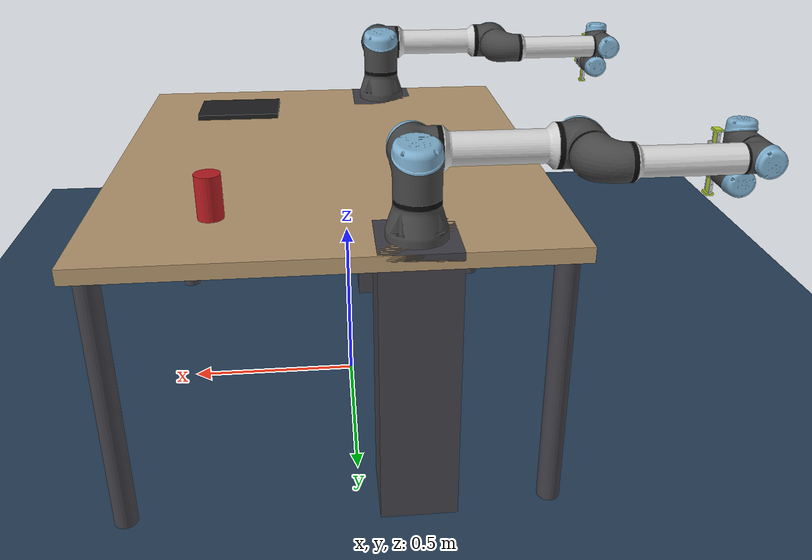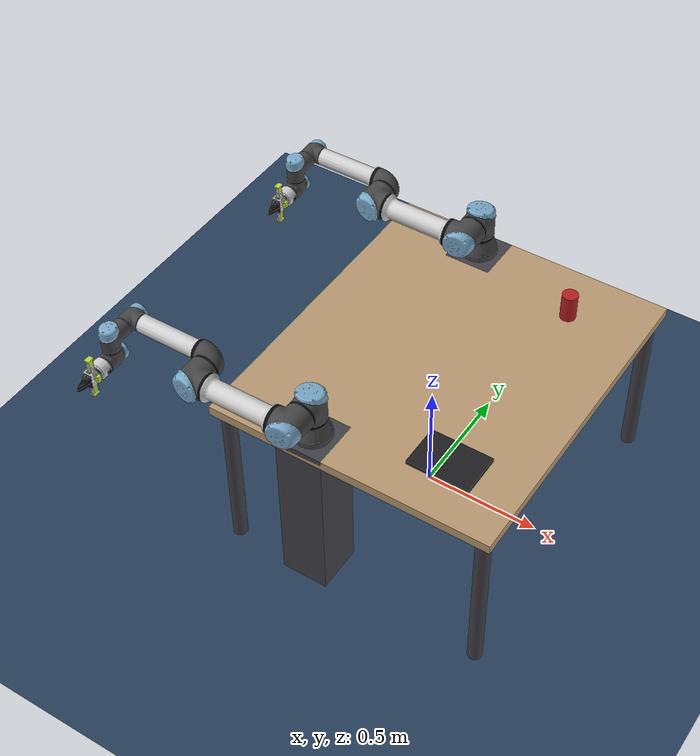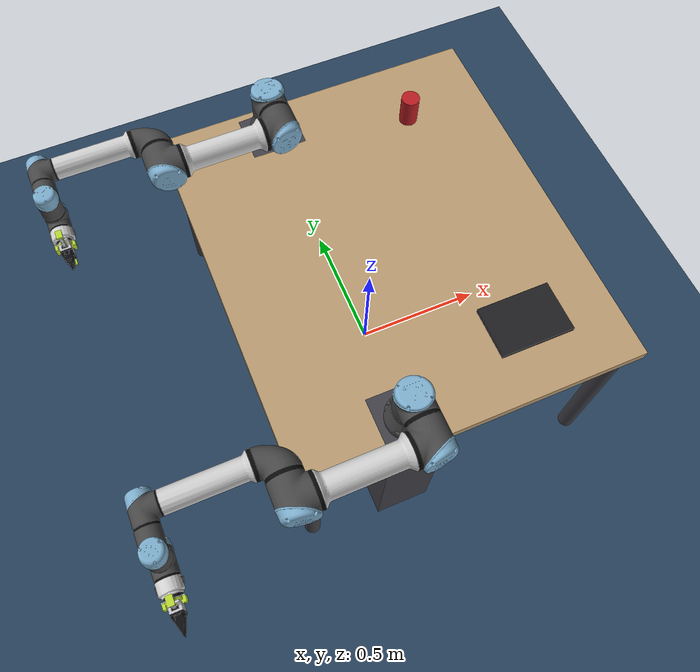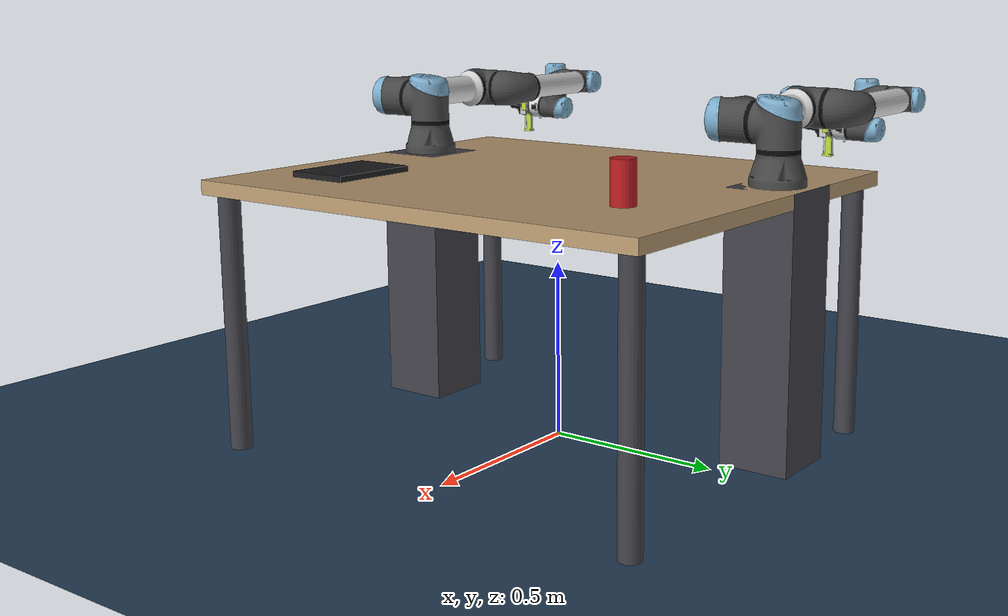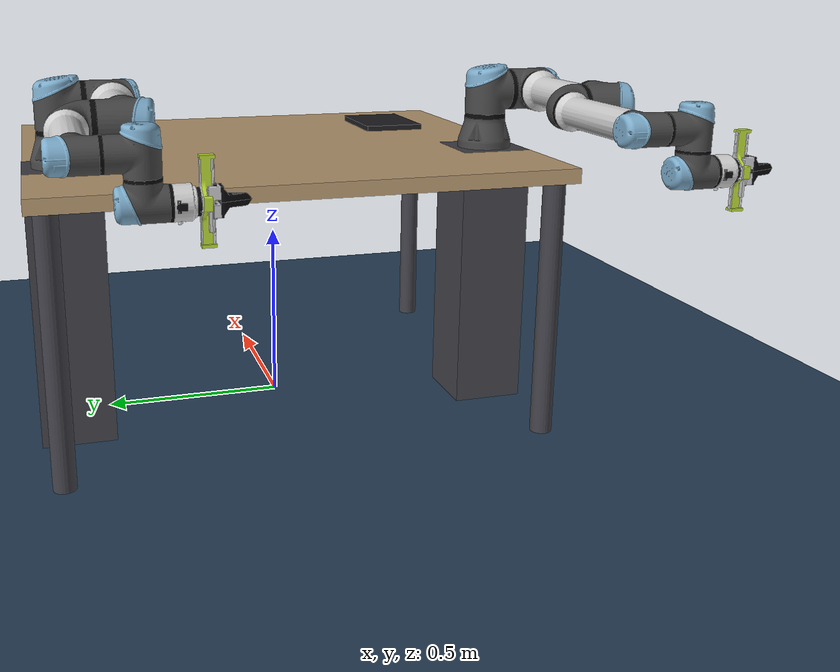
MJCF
<mujoco model="zero_ur5e">
  <compiler angle="radian" meshdir="/home/sid/projects25/src/ZERO/zero_description/meshes/ur5e/" texturedir="/home/sid/projects25/src/ZERO/zero_description/meshes/ur5e/"/>

  <size nkey="1"/>

  <visual>
    <global offwidth="1280" offheight="720"/>
    <headlight ambient="0.22 0.22 0.22" diffuse="0.28 0.28 0.28" specular="0.08 0.08 0.08"/>
  </visual>

  <default>
    <default class="left_main">
      <default class="left_ur5e">
        <material shininess="0.25"/>
        <joint range="-6.28319 6.28319" armature="0.1"/>
        <site size="0.001 0.005 0.005" group="4" rgba="0.5 0.5 0.5 0.3"/>
        <general ctrlrange="-6.2831 6.2831" forcerange="-150 150" biastype="affine" gainprm="2000" biasprm="0 -2000 -400"/>
        <default class="left_size3">
          <default class="left_size3_limited">
            <joint range="-3.1415 3.1415"/>
            <general ctrlrange="-3.1415 3.1415"/>
          </default>
        </default>
        <default class="left_size1">
          <general forcerange="-28 28" gainprm="500" biasprm="0 -500 -100"/>
        </default>
        <default class="left_visual">
          <geom type="mesh" contype="0" conaffinity="0" group="2"/>
        </default>
        <default class="left_collision">
          <geom type="capsule" group="3"/>
          <default class="left_eef_collision">
            <geom type="cylinder"/>
          </default>
        </default>
      </default>
      <default class="left_rg_main">
        <default class="left_rg_rg_seeed">
          <joint armature="0.01" frictionloss="0.2"/>
          <default class="left_rg_rg_visual">
            <geom type="mesh" contype="0" conaffinity="0" group="2"/>
          </default>
          <default class="left_rg_rg_collision">
            <geom type="mesh" group="3"/>
          </default>
          <default class="left_rg_rg_rs06">
            <joint damping="5"/>
            <general forcerange="-36 36" biastype="affine" gainprm="900" biasprm="0 -900 -60"/>
          </default>
          <default class="left_rg_rg_rs00">
            <joint damping="2"/>
            <general forcerange="-14 14" biastype="affine" gainprm="120" biasprm="0 -120 -10"/>
          </default>
          <default class="left_rg_rg_gripper">
            <joint damping="1"/>
            <general forcerange="-1904 1904" biastype="affine" gainprm="5000" biasprm="0 -5000 -41.28"/>
          </default>
        </default>
      </default>
    </default>
    <default class="right_main">
      <default class="right_ur5e">
        <material shininess="0.25"/>
        <joint range="-6.28319 6.28319" armature="0.1"/>
        <site size="0.001 0.005 0.005" group="4" rgba="0.5 0.5 0.5 0.3"/>
        <general ctrlrange="-6.2831 6.2831" forcerange="-150 150" biastype="affine" gainprm="2000" biasprm="0 -2000 -400"/>
        <default class="right_size3">
          <default class="right_size3_limited">
            <joint range="-3.1415 3.1415"/>
            <general ctrlrange="-3.1415 3.1415"/>
          </default>
        </default>
        <default class="right_size1">
          <general forcerange="-28 28" gainprm="500" biasprm="0 -500 -100"/>
        </default>
        <default class="right_visual">
          <geom type="mesh" contype="0" conaffinity="0" group="2"/>
        </default>
        <default class="right_collision">
          <geom type="capsule" group="3"/>
          <default class="right_eef_collision">
            <geom type="cylinder"/>
          </default>
        </default>
      </default>
      <default class="right_rg_main">
        <default class="right_rg_rg_seeed">
          <joint armature="0.01" frictionloss="0.2"/>
          <default class="right_rg_rg_visual">
            <geom type="mesh" contype="0" conaffinity="0" group="2"/>
          </default>
          <default class="right_rg_rg_collision">
            <geom type="mesh" group="3"/>
          </default>
          <default class="right_rg_rg_rs06">
            <joint damping="5"/>
            <general forcerange="-36 36" biastype="affine" gainprm="900" biasprm="0 -900 -60"/>
          </default>
          <default class="right_rg_rg_rs00">
            <joint damping="2"/>
            <general forcerange="-14 14" biastype="affine" gainprm="120" biasprm="0 -120 -10"/>
          </default>
          <default class="right_rg_rg_gripper">
            <joint damping="1"/>
            <general forcerange="-1904 1904" biastype="affine" gainprm="5000" biasprm="0 -5000 -41.28"/>
          </default>
        </default>
      </default>
    </default>
  </default>

  <asset>
    <texture type="skybox" colorspace="auto" name="skybox" builtin="gradient" rgb1="0.3 0.5 0.7" rgb2="0 0 0" width="512" height="3072"/>
    <texture type="2d" colorspace="auto" name="groundplane" builtin="checker" mark="edge" rgb1="0.2 0.3 0.4" rgb2="0.1 0.2 0.3" markrgb="0.8 0.8 0.8" width="300" height="300"/>
    <material name="groundplane" texture="groundplane" texrepeat="5 5" reflectance="0.2"/>
    <material name="table_mat" rgba="0.72 0.6 0.44 1"/>
    <material name="leg_mat" rgba="0.25 0.25 0.28 1"/>
    <material name="left_black" class="left_ur5e" rgba="0.033 0.033 0.033 1"/>
    <material name="left_jointgray" class="left_ur5e" rgba="0.278 0.278 0.278 1"/>
    <material name="left_linkgray" class="left_ur5e" rgba="0.82 0.82 0.82 1"/>
    <material name="left_urblue" class="left_ur5e" rgba="0.49 0.678 0.8 1"/>
    <material name="left_rg_rg_alum" specular="0.4" shininess="0.3" rgba="0.78 0.78 0.8 1"/>
    <material name="left_rg_rg_lime" specular="0.4" shininess="0.3" rgba="0.72 0.85 0.2 1"/>
    <material name="left_rg_rg_black" specular="0.4" shininess="0.3" rgba="0.05 0.05 0.06 1"/>
    <material name="right_black" class="right_ur5e" rgba="0.033 0.033 0.033 1"/>
    <material name="right_jointgray" class="right_ur5e" rgba="0.278 0.278 0.278 1"/>
    <material name="right_linkgray" class="right_ur5e" rgba="0.82 0.82 0.82 1"/>
    <material name="right_urblue" class="right_ur5e" rgba="0.49 0.678 0.8 1"/>
    <material name="right_rg_rg_alum" specular="0.4" shininess="0.3" rgba="0.78 0.78 0.8 1"/>
    <material name="right_rg_rg_lime" specular="0.4" shininess="0.3" rgba="0.72 0.85 0.2 1"/>
    <material name="right_rg_rg_black" specular="0.4" shininess="0.3" rgba="0.05 0.05 0.06 1"/>
    <mesh name="left_base_0" file="base_0.obj"/>
    <mesh name="left_base_1" file="base_1.obj"/>
    <mesh name="left_shoulder_0" file="shoulder_0.obj"/>
    <mesh name="left_shoulder_1" file="shoulder_1.obj"/>
    <mesh name="left_shoulder_2" file="shoulder_2.obj"/>
    <mesh name="left_upperarm_0" file="upperarm_0.obj"/>
    <mesh name="left_upperarm_1" file="upperarm_1.obj"/>
    <mesh name="left_upperarm_2" file="upperarm_2.obj"/>
    <mesh name="left_upperarm_3" file="upperarm_3.obj"/>
    <mesh name="left_forearm_0" file="forearm_0.obj"/>
    <mesh name="left_forearm_1" file="forearm_1.obj"/>
    <mesh name="left_forearm_2" file="forearm_2.obj"/>
    <mesh name="left_forearm_3" file="forearm_3.obj"/>
    <mesh name="left_wrist1_0" file="wrist1_0.obj"/>
    <mesh name="left_wrist1_1" file="wrist1_1.obj"/>
    <mesh name="left_wrist1_2" file="wrist1_2.obj"/>
    <mesh name="left_wrist2_0" file="wrist2_0.obj"/>
    <mesh name="left_wrist2_1" file="wrist2_1.obj"/>
    <mesh name="left_wrist2_2" file="wrist2_2.obj"/>
    <mesh name="left_wrist3" file="wrist3.obj"/>
    <mesh name="left_rg_rg_cnc7" file="/home/sid/projects25/src/ZERO/robots/seeed_rebot_devarm/assets/cnc7.STL"/>
    <mesh name="left_rg_rg_cnc_left" file="/home/sid/projects25/src/ZERO/robots/seeed_rebot_devarm/assets/cnc_left.STL"/>
    <mesh name="left_rg_rg_cnc_right" file="/home/sid/projects25/src/ZERO/robots/seeed_rebot_devarm/assets/cnc_right.STL"/>
    <mesh name="left_rg_rg_motor_7" file="/home/sid/projects25/src/ZERO/robots/seeed_rebot_devarm/assets/motor_7.STL"/>
    <mesh name="left_rg_rg_pla7_green" file="/home/sid/projects25/src/ZERO/robots/seeed_rebot_devarm/assets/pla7_green.STL"/>
    <mesh name="left_rg_rg_pla_left" file="/home/sid/projects25/src/ZERO/robots/seeed_rebot_devarm/assets/pla_left.STL"/>
    <mesh name="left_rg_rg_pla_right" file="/home/sid/projects25/src/ZERO/robots/seeed_rebot_devarm/assets/pla_right.STL"/>
    <mesh name="left_rg_rg_gripper_end_col_0" file="/home/sid/projects25/src/ZERO/robots/seeed_rebot_devarm/assets/gripper_end_col_0.stl"/>
    <mesh name="left_rg_rg_gripper_end_col_1" file="/home/sid/projects25/src/ZERO/robots/seeed_rebot_devarm/assets/gripper_end_col_1.stl"/>
    <mesh name="left_rg_rg_gripper_end_col_2" file="/home/sid/projects25/src/ZERO/robots/seeed_rebot_devarm/assets/gripper_end_col_2.stl"/>
    <mesh name="left_rg_rg_gripper_end_col_3" file="/home/sid/projects25/src/ZERO/robots/seeed_rebot_devarm/assets/gripper_end_col_3.stl"/>
    <mesh name="left_rg_rg_gripper_end_col_4" file="/home/sid/projects25/src/ZERO/robots/seeed_rebot_devarm/assets/gripper_end_col_4.stl"/>
    <mesh name="left_rg_rg_gripper_end_col_5" file="/home/sid/projects25/src/ZERO/robots/seeed_rebot_devarm/assets/gripper_end_col_5.stl"/>
    <mesh name="left_rg_rg_gripper_end_col_6" file="/home/sid/projects25/src/ZERO/robots/seeed_rebot_devarm/assets/gripper_end_col_6.stl"/>
    <mesh name="left_rg_rg_gripper_end_col_7" file="/home/sid/projects25/src/ZERO/robots/seeed_rebot_devarm/assets/gripper_end_col_7.stl"/>
    <mesh name="left_rg_rg_gripper_end_col_8" file="/home/sid/projects25/src/ZERO/robots/seeed_rebot_devarm/assets/gripper_end_col_8.stl"/>
    <mesh name="left_rg_rg_gripper_end_col_9" file="/home/sid/projects25/src/ZERO/robots/seeed_rebot_devarm/assets/gripper_end_col_9.stl"/>
    <mesh name="left_rg_rg_gripper_end_col_10" file="/home/sid/projects25/src/ZERO/robots/seeed_rebot_devarm/assets/gripper_end_col_10.stl"/>
    <mesh name="left_rg_rg_gripper_end_col_11" file="/home/sid/projects25/src/ZERO/robots/seeed_rebot_devarm/assets/gripper_end_col_11.stl"/>
    <mesh name="left_rg_rg_gripper_left_col_0" file="/home/sid/projects25/src/ZERO/robots/seeed_rebot_devarm/assets/gripper_left_col_0.stl"/>
    <mesh name="left_rg_rg_gripper_left_col_1" file="/home/sid/projects25/src/ZERO/robots/seeed_rebot_devarm/assets/gripper_left_col_1.stl"/>
    <mesh name="left_rg_rg_gripper_left_col_2" file="/home/sid/projects25/src/ZERO/robots/seeed_rebot_devarm/assets/gripper_left_col_2.stl"/>
    <mesh name="left_rg_rg_gripper_left_col_3" file="/home/sid/projects25/src/ZERO/robots/seeed_rebot_devarm/assets/gripper_left_col_3.stl"/>
    <mesh name="left_rg_rg_gripper_left_col_4" file="/home/sid/projects25/src/ZERO/robots/seeed_rebot_devarm/assets/gripper_left_col_4.stl"/>
    <mesh name="left_rg_rg_gripper_left_col_5" file="/home/sid/projects25/src/ZERO/robots/seeed_rebot_devarm/assets/gripper_left_col_5.stl"/>
    <mesh name="left_rg_rg_gripper_left_col_6" file="/home/sid/projects25/src/ZERO/robots/seeed_rebot_devarm/assets/gripper_left_col_6.stl"/>
    <mesh name="left_rg_rg_gripper_left_col_7" file="/home/sid/projects25/src/ZERO/robots/seeed_rebot_devarm/assets/gripper_left_col_7.stl"/>
    <mesh name="left_rg_rg_gripper_right_col_0" file="/home/sid/projects25/src/ZERO/robots/seeed_rebot_devarm/assets/gripper_right_col_0.stl"/>
    <mesh name="left_rg_rg_gripper_right_col_1" file="/home/sid/projects25/src/ZERO/robots/seeed_rebot_devarm/assets/gripper_right_col_1.stl"/>
    <mesh name="left_rg_rg_gripper_right_col_2" file="/home/sid/projects25/src/ZERO/robots/seeed_rebot_devarm/assets/gripper_right_col_2.stl"/>
    <mesh name="left_rg_rg_gripper_right_col_3" file="/home/sid/projects25/src/ZERO/robots/seeed_rebot_devarm/assets/gripper_right_col_3.stl"/>
    <mesh name="left_rg_rg_gripper_right_col_4" file="/home/sid/projects25/src/ZERO/robots/seeed_rebot_devarm/assets/gripper_right_col_4.stl"/>
    <mesh name="left_rg_rg_gripper_right_col_5" file="/home/sid/projects25/src/ZERO/robots/seeed_rebot_devarm/assets/gripper_right_col_5.stl"/>
    <mesh name="left_rg_rg_gripper_right_col_6" file="/home/sid/projects25/src/ZERO/robots/seeed_rebot_devarm/assets/gripper_right_col_6.stl"/>
    <mesh name="left_rg_rg_gripper_right_col_7" file="/home/sid/projects25/src/ZERO/robots/seeed_rebot_devarm/assets/gripper_right_col_7.stl"/>
    <mesh name="right_base_0" file="base_0.obj"/>
    <mesh name="right_base_1" file="base_1.obj"/>
    <mesh name="right_shoulder_0" file="shoulder_0.obj"/>
    <mesh name="right_shoulder_1" file="shoulder_1.obj"/>
    <mesh name="right_shoulder_2" file="shoulder_2.obj"/>
    <mesh name="right_upperarm_0" file="upperarm_0.obj"/>
    <mesh name="right_upperarm_1" file="upperarm_1.obj"/>
    <mesh name="right_upperarm_2" file="upperarm_2.obj"/>
    <mesh name="right_upperarm_3" file="upperarm_3.obj"/>
    <mesh name="right_forearm_0" file="forearm_0.obj"/>
    <mesh name="right_forearm_1" file="forearm_1.obj"/>
    <mesh name="right_forearm_2" file="forearm_2.obj"/>
    <mesh name="right_forearm_3" file="forearm_3.obj"/>
    <mesh name="right_wrist1_0" file="wrist1_0.obj"/>
    <mesh name="right_wrist1_1" file="wrist1_1.obj"/>
    <mesh name="right_wrist1_2" file="wrist1_2.obj"/>
    <mesh name="right_wrist2_0" file="wrist2_0.obj"/>
    <mesh name="right_wrist2_1" file="wrist2_1.obj"/>
    <mesh name="right_wrist2_2" file="wrist2_2.obj"/>
    <mesh name="right_wrist3" file="wrist3.obj"/>
    <mesh name="right_rg_rg_cnc7" file="/home/sid/projects25/src/ZERO/robots/seeed_rebot_devarm/assets/cnc7.STL"/>
    <mesh name="right_rg_rg_cnc_left" file="/home/sid/projects25/src/ZERO/robots/seeed_rebot_devarm/assets/cnc_left.STL"/>
    <mesh name="right_rg_rg_cnc_right" file="/home/sid/projects25/src/ZERO/robots/seeed_rebot_devarm/assets/cnc_right.STL"/>
    <mesh name="right_rg_rg_motor_7" file="/home/sid/projects25/src/ZERO/robots/seeed_rebot_devarm/assets/motor_7.STL"/>
    <mesh name="right_rg_rg_pla7_green" file="/home/sid/projects25/src/ZERO/robots/seeed_rebot_devarm/assets/pla7_green.STL"/>
    <mesh name="right_rg_rg_pla_left" file="/home/sid/projects25/src/ZERO/robots/seeed_rebot_devarm/assets/pla_left.STL"/>
    <mesh name="right_rg_rg_pla_right" file="/home/sid/projects25/src/ZERO/robots/seeed_rebot_devarm/assets/pla_right.STL"/>
    <mesh name="right_rg_rg_gripper_end_col_0" file="/home/sid/projects25/src/ZERO/robots/seeed_rebot_devarm/assets/gripper_end_col_0.stl"/>
    <mesh name="right_rg_rg_gripper_end_col_1" file="/home/sid/projects25/src/ZERO/robots/seeed_rebot_devarm/assets/gripper_end_col_1.stl"/>
    <mesh name="right_rg_rg_gripper_end_col_2" file="/home/sid/projects25/src/ZERO/robots/seeed_rebot_devarm/assets/gripper_end_col_2.stl"/>
    <mesh name="right_rg_rg_gripper_end_col_3" file="/home/sid/projects25/src/ZERO/robots/seeed_rebot_devarm/assets/gripper_end_col_3.stl"/>
    <mesh name="right_rg_rg_gripper_end_col_4" file="/home/sid/projects25/src/ZERO/robots/seeed_rebot_devarm/assets/gripper_end_col_4.stl"/>
    <mesh name="right_rg_rg_gripper_end_col_5" file="/home/sid/projects25/src/ZERO/robots/seeed_rebot_devarm/assets/gripper_end_col_5.stl"/>
    <mesh name="right_rg_rg_gripper_end_col_6" file="/home/sid/projects25/src/ZERO/robots/seeed_rebot_devarm/assets/gripper_end_col_6.stl"/>
    <mesh name="right_rg_rg_gripper_end_col_7" file="/home/sid/projects25/src/ZERO/robots/seeed_rebot_devarm/assets/gripper_end_col_7.stl"/>
    <mesh name="right_rg_rg_gripper_end_col_8" file="/home/sid/projects25/src/ZERO/robots/seeed_rebot_devarm/assets/gripper_end_col_8.stl"/>
    <mesh name="right_rg_rg_gripper_end_col_9" file="/home/sid/projects25/src/ZERO/robots/seeed_rebot_devarm/assets/gripper_end_col_9.stl"/>
    <mesh name="right_rg_rg_gripper_end_col_10" file="/home/sid/projects25/src/ZERO/robots/seeed_rebot_devarm/assets/gripper_end_col_10.stl"/>
    <mesh name="right_rg_rg_gripper_end_col_11" file="/home/sid/projects25/src/ZERO/robots/seeed_rebot_devarm/assets/gripper_end_col_11.stl"/>
    <mesh name="right_rg_rg_gripper_left_col_0" file="/home/sid/projects25/src/ZERO/robots/seeed_rebot_devarm/assets/gripper_left_col_0.stl"/>
    <mesh name="right_rg_rg_gripper_left_col_1" file="/home/sid/projects25/src/ZERO/robots/seeed_rebot_devarm/assets/gripper_left_col_1.stl"/>
    <mesh name="right_rg_rg_gripper_left_col_2" file="/home/sid/projects25/src/ZERO/robots/seeed_rebot_devarm/assets/gripper_left_col_2.stl"/>
    <mesh name="right_rg_rg_gripper_left_col_3" file="/home/sid/projects25/src/ZERO/robots/seeed_rebot_devarm/assets/gripper_left_col_3.stl"/>
    <mesh name="right_rg_rg_gripper_left_col_4" file="/home/sid/projects25/src/ZERO/robots/seeed_rebot_devarm/assets/gripper_left_col_4.stl"/>
    <mesh name="right_rg_rg_gripper_left_col_5" file="/home/sid/projects25/src/ZERO/robots/seeed_rebot_devarm/assets/gripper_left_col_5.stl"/>
    <mesh name="right_rg_rg_gripper_left_col_6" file="/home/sid/projects25/src/ZERO/robots/seeed_rebot_devarm/assets/gripper_left_col_6.stl"/>
    <mesh name="right_rg_rg_gripper_left_col_7" file="/home/sid/projects25/src/ZERO/robots/seeed_rebot_devarm/assets/gripper_left_col_7.stl"/>
    <mesh name="right_rg_rg_gripper_right_col_0" file="/home/sid/projects25/src/ZERO/robots/seeed_rebot_devarm/assets/gripper_right_col_0.stl"/>
    <mesh name="right_rg_rg_gripper_right_col_1" file="/home/sid/projects25/src/ZERO/robots/seeed_rebot_devarm/assets/gripper_right_col_1.stl"/>
    <mesh name="right_rg_rg_gripper_right_col_2" file="/home/sid/projects25/src/ZERO/robots/seeed_rebot_devarm/assets/gripper_right_col_2.stl"/>
    <mesh name="right_rg_rg_gripper_right_col_3" file="/home/sid/projects25/src/ZERO/robots/seeed_rebot_devarm/assets/gripper_right_col_3.stl"/>
    <mesh name="right_rg_rg_gripper_right_col_4" file="/home/sid/projects25/src/ZERO/robots/seeed_rebot_devarm/assets/gripper_right_col_4.stl"/>
    <mesh name="right_rg_rg_gripper_right_col_5" file="/home/sid/projects25/src/ZERO/robots/seeed_rebot_devarm/assets/gripper_right_col_5.stl"/>
    <mesh name="right_rg_rg_gripper_right_col_6" file="/home/sid/projects25/src/ZERO/robots/seeed_rebot_devarm/assets/gripper_right_col_6.stl"/>
    <mesh name="right_rg_rg_gripper_right_col_7" file="/home/sid/projects25/src/ZERO/robots/seeed_rebot_devarm/assets/gripper_right_col_7.stl"/>
  </asset>

  <worldbody>
    <geom name="floor" size="0 0 0.05" type="plane" material="groundplane"/>
    <camera name="front" pos="1.15 0 1.15" quat="0.573635 0.413453 0.413453 0.573635" resolution="224 224" fovy="58"/>
    <light pos="0 0 0" dir="0.276172 -0.276172 -0.920575" type="directional" ambient="0.1 0.1 0.1" diffuse="0.45 0.45 0.45" specular="0.05 0.05 0.05"/>
    <light pos="0 0 0" dir="-0.357771 0.268328 -0.894427" type="directional" castshadow="false" ambient="0.1 0.1 0.1" diffuse="0.28 0.28 0.28" specular="0.05 0.05 0.05"/>
    <body name="table" pos="0.05 0 0.73">
      <geom name="table_top" size="0.6 0.7 0.02" type="box" material="table_mat"/>
    </body>
    <body name="leg0" pos="0.6 0.65 0.355">
      <geom name="leg0_g" size="0.03 0.355" type="cylinder" material="leg_mat"/>
    </body>
    <body name="leg1" pos="0.6 -0.65 0.355">
      <geom name="leg1_g" size="0.03 0.355" type="cylinder" material="leg_mat"/>
    </body>
    <body name="leg2" pos="-0.5 0.65 0.355">
      <geom name="leg2_g" size="0.03 0.355" type="cylinder" material="leg_mat"/>
    </body>
    <body name="leg3" pos="-0.5 -0.65 0.355">
      <geom name="leg3_g" size="0.03 0.355" type="cylinder" material="leg_mat"/>
    </body>
    <body name="left_plinth" pos="-0.15 0.6 0.375">
      <geom name="left_plinth_g" size="0.1 0.1 0.375" type="box" material="leg_mat"/>
    </body>
    <body name="right_plinth" pos="-0.15 -0.6 0.375">
      <geom name="right_plinth_g" size="0.1 0.1 0.375" type="box" material="leg_mat"/>
    </body>
    <body name="left_base" childclass="left_ur5e" pos="-0.15 0.6 0.75" quat="0 0 0 -1">
      <inertial pos="0 0 0" mass="4" diaginertia="0.00443333 0.00443333 0.0072"/>
      <geom class="left_visual" material="left_black" mesh="left_base_0"/>
      <geom class="left_visual" material="left_jointgray" mesh="left_base_1"/>
      <body name="left_shoulder_link" pos="0 0 0.163">
        <inertial pos="0 0 0" mass="3.7" diaginertia="0.0102675 0.0102675 0.00666"/>
        <joint name="left_shoulder_pan_joint" class="left_size3" pos="0 0 0" axis="0 0 1"/>
        <geom class="left_visual" material="left_urblue" mesh="left_shoulder_0"/>
        <geom class="left_visual" material="left_black" mesh="left_shoulder_1"/>
        <geom class="left_visual" material="left_jointgray" mesh="left_shoulder_2"/>
        <geom class="left_collision" size="0.06 0.06" pos="0 0 -0.04"/>
        <body name="left_upper_arm_link" pos="0 0.138 0" quat="0.707107 0 0.707107 0">
          <inertial pos="0 0 0.2125" mass="8.393" diaginertia="0.133886 0.133886 0.0151074"/>
          <joint name="left_shoulder_lift_joint" class="left_size3" pos="0 0 0" axis="0 1 0"/>
          <geom class="left_visual" material="left_linkgray" mesh="left_upperarm_0"/>
          <geom class="left_visual" material="left_black" mesh="left_upperarm_1"/>
          <geom class="left_visual" material="left_jointgray" mesh="left_upperarm_2"/>
          <geom class="left_visual" material="left_urblue" mesh="left_upperarm_3"/>
          <geom class="left_collision" size="0.06 0.06" pos="0 -0.04 0" quat="0.707107 0.707107 0 0"/>
          <geom class="left_collision" size="0.05 0.2" pos="0 0 0.2"/>
          <body name="left_forearm_link" pos="0 -0.131 0.425">
            <inertial pos="0 0 0.196" mass="2.275" diaginertia="0.0311796 0.0311796 0.004095"/>
            <joint name="left_elbow_joint" class="left_size3_limited" pos="0 0 0" axis="0 1 0"/>
            <geom class="left_visual" material="left_urblue" mesh="left_forearm_0"/>
            <geom class="left_visual" material="left_linkgray" mesh="left_forearm_1"/>
            <geom class="left_visual" material="left_black" mesh="left_forearm_2"/>
            <geom class="left_visual" material="left_jointgray" mesh="left_forearm_3"/>
            <geom class="left_collision" size="0.055 0.06" pos="0 0.08 0" quat="0.707107 0.707107 0 0"/>
            <geom class="left_collision" size="0.038 0.19" pos="0 0 0.2"/>
            <body name="left_wrist_1_link" pos="0 0 0.392" quat="0.707107 0 0.707107 0">
              <inertial pos="0 0.127 0" mass="1.219" diaginertia="0.0025599 0.0025599 0.0021942"/>
              <joint name="left_wrist_1_joint" class="left_size1" pos="0 0 0" axis="0 1 0"/>
              <geom class="left_visual" material="left_black" mesh="left_wrist1_0"/>
              <geom class="left_visual" material="left_urblue" mesh="left_wrist1_1"/>
              <geom class="left_visual" material="left_jointgray" mesh="left_wrist1_2"/>
              <geom class="left_collision" size="0.04 0.07" pos="0 0.05 0" quat="0.707107 0.707107 0 0"/>
              <body name="left_wrist_2_link" pos="0 0.127 0">
                <inertial pos="0 0 0.1" mass="1.219" diaginertia="0.0025599 0.0025599 0.0021942"/>
                <joint name="left_wrist_2_joint" class="left_size1" pos="0 0 0" axis="0 0 1"/>
                <geom class="left_visual" material="left_black" mesh="left_wrist2_0"/>
                <geom class="left_visual" material="left_urblue" mesh="left_wrist2_1"/>
                <geom class="left_visual" material="left_jointgray" mesh="left_wrist2_2"/>
                <geom class="left_collision" size="0.04 0.06" pos="0 0 0.04"/>
                <geom class="left_collision" size="0.04 0.04" pos="0 0.02 0.1" quat="0.707107 0.707107 0 0"/>
                <body name="left_wrist_3_link" pos="0 0 0.1">
                  <inertial pos="0 0.0771683 0" quat="0.707107 0 0 0.707107" mass="0.1889" diaginertia="0.000132134 9.90863e-05 9.90863e-05"/>
                  <joint name="left_wrist_3_joint" class="left_size1" pos="0 0 0" axis="0 1 0"/>
                  <geom class="left_visual" material="left_linkgray" mesh="left_wrist3"/>
                  <geom class="left_eef_collision" size="0.04 0.02" pos="0 0.08 0" quat="0.707107 0.707107 0 0"/>
                  <site name="left_attachment_site" pos="0 0.1 0" quat="-0.707107 0.707107 0 0"/>
                  <body name="left_rg_gripper_end" pos="0 0.21 0" quat="0.5 -0.5 -0.5 0.5">
                    <inertial pos="-0.112752 0.000128443 -5.72602e-06" quat="0.504636 0.498456 -0.49563 0.501234" mass="0.65" diaginertia="0.000453574 0.000373537 0.000158259"/>
                    <geom class="left_rg_rg_collision" mesh="left_rg_rg_gripper_end_col_0"/>
                    <geom class="left_rg_rg_collision" mesh="left_rg_rg_gripper_end_col_1"/>
                    <geom class="left_rg_rg_collision" mesh="left_rg_rg_gripper_end_col_2"/>
                    <geom class="left_rg_rg_collision" mesh="left_rg_rg_gripper_end_col_3"/>
                    <geom class="left_rg_rg_collision" mesh="left_rg_rg_gripper_end_col_4"/>
                    <geom class="left_rg_rg_collision" mesh="left_rg_rg_gripper_end_col_5"/>
                    <geom class="left_rg_rg_collision" mesh="left_rg_rg_gripper_end_col_6"/>
                    <geom class="left_rg_rg_collision" mesh="left_rg_rg_gripper_end_col_7"/>
                    <geom class="left_rg_rg_collision" mesh="left_rg_rg_gripper_end_col_8"/>
                    <geom class="left_rg_rg_collision" mesh="left_rg_rg_gripper_end_col_9"/>
                    <geom class="left_rg_rg_collision" mesh="left_rg_rg_gripper_end_col_10"/>
                    <geom class="left_rg_rg_collision" mesh="left_rg_rg_gripper_end_col_11"/>
                    <geom class="left_rg_rg_visual" material="left_rg_rg_lime" mesh="left_rg_rg_pla7_green"/>
                    <geom class="left_rg_rg_visual" material="left_rg_rg_alum" mesh="left_rg_rg_cnc7"/>
                    <geom class="left_rg_rg_visual" material="left_rg_rg_black" mesh="left_rg_rg_motor_7"/>
                    <site name="left_eef" pos="-0.0109 0 0.005" size="0.008" group="4"/>
                    <camera name="left_wrist" pos="-0.1009 0 0.005" quat="0.5 -0.5 -0.5 0.5" resolution="224 224" fovy="70"/>
                    <body name="left_rg_gripper_left" pos="-0.041939 -7.3385e-05 0" quat="0.5 0.5 -0.5 0.5">
                      <inertial pos="-0.00218009 0.018709 0.00932189" mass="0.0752" diaginertia="1.09878e-05 9.50146e-06 9.3078e-06"/>
                      <joint name="left_rg_gripper_joint1" class="left_rg_rg_gripper" pos="0 0 0" axis="0 0 1" type="slide" range="0 0.05"/>
                      <geom class="left_rg_rg_collision" mesh="left_rg_rg_gripper_left_col_0"/>
                      <geom class="left_rg_rg_collision" mesh="left_rg_rg_gripper_left_col_1"/>
                      <geom class="left_rg_rg_collision" mesh="left_rg_rg_gripper_left_col_2"/>
                      <geom class="left_rg_rg_collision" mesh="left_rg_rg_gripper_left_col_3"/>
                      <geom class="left_rg_rg_collision" mesh="left_rg_rg_gripper_left_col_4"/>
                      <geom class="left_rg_rg_collision" mesh="left_rg_rg_gripper_left_col_5"/>
                      <geom class="left_rg_rg_collision" mesh="left_rg_rg_gripper_left_col_6"/>
                      <geom class="left_rg_rg_collision" mesh="left_rg_rg_gripper_left_col_7"/>
                      <geom class="left_rg_rg_visual" material="left_rg_rg_black" mesh="left_rg_rg_pla_left"/>
                      <geom class="left_rg_rg_visual" material="left_rg_rg_alum" mesh="left_rg_rg_cnc_left"/>
                      <site name="left_gripper_left_ft_site" pos="0 0 0" group="4"/>
                    </body>
                    <body name="left_rg_gripper_right" pos="-0.041939 7.3385e-05 0" quat="0.5 -0.5 -0.5 -0.5">
                      <inertial pos="0.00218009 -0.018709 0.00932189" mass="0.0752" diaginertia="1.09878e-05 9.50146e-06 9.3078e-06"/>
                      <joint name="left_rg_gripper_joint2" class="left_rg_rg_gripper" pos="0 0 0" axis="0 0 1" type="slide" range="0 0.05"/>
                      <geom class="left_rg_rg_collision" mesh="left_rg_rg_gripper_right_col_0"/>
                      <geom class="left_rg_rg_collision" mesh="left_rg_rg_gripper_right_col_1"/>
                      <geom class="left_rg_rg_collision" mesh="left_rg_rg_gripper_right_col_2"/>
                      <geom class="left_rg_rg_collision" mesh="left_rg_rg_gripper_right_col_3"/>
                      <geom class="left_rg_rg_collision" mesh="left_rg_rg_gripper_right_col_4"/>
                      <geom class="left_rg_rg_collision" mesh="left_rg_rg_gripper_right_col_5"/>
                      <geom class="left_rg_rg_collision" mesh="left_rg_rg_gripper_right_col_6"/>
                      <geom class="left_rg_rg_collision" mesh="left_rg_rg_gripper_right_col_7"/>
                      <geom class="left_rg_rg_visual" material="left_rg_rg_black" mesh="left_rg_rg_pla_right"/>
                      <geom class="left_rg_rg_visual" material="left_rg_rg_alum" mesh="left_rg_rg_cnc_right"/>
                      <site name="left_gripper_right_ft_site" pos="0 0 0" group="4"/>
                    </body>
                  </body>
                </body>
              </body>
            </body>
          </body>
        </body>
      </body>
    </body>
    <body name="right_base" childclass="right_ur5e" pos="-0.15 -0.6 0.75" quat="0 0 0 -1">
      <inertial pos="0 0 0" mass="4" diaginertia="0.00443333 0.00443333 0.0072"/>
      <geom class="right_visual" material="right_black" mesh="right_base_0"/>
      <geom class="right_visual" material="right_jointgray" mesh="right_base_1"/>
      <body name="right_shoulder_link" pos="0 0 0.163">
        <inertial pos="0 0 0" mass="3.7" diaginertia="0.0102675 0.0102675 0.00666"/>
        <joint name="right_shoulder_pan_joint" class="right_size3" pos="0 0 0" axis="0 0 1"/>
        <geom class="right_visual" material="right_urblue" mesh="right_shoulder_0"/>
        <geom class="right_visual" material="right_black" mesh="right_shoulder_1"/>
        <geom class="right_visual" material="right_jointgray" mesh="right_shoulder_2"/>
        <geom class="right_collision" size="0.06 0.06" pos="0 0 -0.04"/>
        <body name="right_upper_arm_link" pos="0 0.138 0" quat="0.707107 0 0.707107 0">
          <inertial pos="0 0 0.2125" mass="8.393" diaginertia="0.133886 0.133886 0.0151074"/>
          <joint name="right_shoulder_lift_joint" class="right_size3" pos="0 0 0" axis="0 1 0"/>
          <geom class="right_visual" material="right_linkgray" mesh="right_upperarm_0"/>
          <geom class="right_visual" material="right_black" mesh="right_upperarm_1"/>
          <geom class="right_visual" material="right_jointgray" mesh="right_upperarm_2"/>
          <geom class="right_visual" material="right_urblue" mesh="right_upperarm_3"/>
          <geom class="right_collision" size="0.06 0.06" pos="0 -0.04 0" quat="0.707107 0.707107 0 0"/>
          <geom class="right_collision" size="0.05 0.2" pos="0 0 0.2"/>
          <body name="right_forearm_link" pos="0 -0.131 0.425">
            <inertial pos="0 0 0.196" mass="2.275" diaginertia="0.0311796 0.0311796 0.004095"/>
            <joint name="right_elbow_joint" class="right_size3_limited" pos="0 0 0" axis="0 1 0"/>
            <geom class="right_visual" material="right_urblue" mesh="right_forearm_0"/>
            <geom class="right_visual" material="right_linkgray" mesh="right_forearm_1"/>
            <geom class="right_visual" material="right_black" mesh="right_forearm_2"/>
            <geom class="right_visual" material="right_jointgray" mesh="right_forearm_3"/>
            <geom class="right_collision" size="0.055 0.06" pos="0 0.08 0" quat="0.707107 0.707107 0 0"/>
            <geom class="right_collision" size="0.038 0.19" pos="0 0 0.2"/>
            <body name="right_wrist_1_link" pos="0 0 0.392" quat="0.707107 0 0.707107 0">
              <inertial pos="0 0.127 0" mass="1.219" diaginertia="0.0025599 0.0025599 0.0021942"/>
              <joint name="right_wrist_1_joint" class="right_size1" pos="0 0 0" axis="0 1 0"/>
              <geom class="right_visual" material="right_black" mesh="right_wrist1_0"/>
              <geom class="right_visual" material="right_urblue" mesh="right_wrist1_1"/>
              <geom class="right_visual" material="right_jointgray" mesh="right_wrist1_2"/>
              <geom class="right_collision" size="0.04 0.07" pos="0 0.05 0" quat="0.707107 0.707107 0 0"/>
              <body name="right_wrist_2_link" pos="0 0.127 0">
                <inertial pos="0 0 0.1" mass="1.219" diaginertia="0.0025599 0.0025599 0.0021942"/>
                <joint name="right_wrist_2_joint" class="right_size1" pos="0 0 0" axis="0 0 1"/>
                <geom class="right_visual" material="right_black" mesh="right_wrist2_0"/>
                <geom class="right_visual" material="right_urblue" mesh="right_wrist2_1"/>
                <geom class="right_visual" material="right_jointgray" mesh="right_wrist2_2"/>
                <geom class="right_collision" size="0.04 0.06" pos="0 0 0.04"/>
                <geom class="right_collision" size="0.04 0.04" pos="0 0.02 0.1" quat="0.707107 0.707107 0 0"/>
                <body name="right_wrist_3_link" pos="0 0 0.1">
                  <inertial pos="0 0.0771683 0" quat="0.707107 0 0 0.707107" mass="0.1889" diaginertia="0.000132134 9.90863e-05 9.90863e-05"/>
                  <joint name="right_wrist_3_joint" class="right_size1" pos="0 0 0" axis="0 1 0"/>
                  <geom class="right_visual" material="right_linkgray" mesh="right_wrist3"/>
                  <geom class="right_eef_collision" size="0.04 0.02" pos="0 0.08 0" quat="0.707107 0.707107 0 0"/>
                  <site name="right_attachment_site" pos="0 0.1 0" quat="-0.707107 0.707107 0 0"/>
                  <body name="right_rg_gripper_end" pos="0 0.21 0" quat="0.5 -0.5 -0.5 0.5">
                    <inertial pos="-0.112752 0.000128443 -5.72602e-06" quat="0.504636 0.498456 -0.49563 0.501234" mass="0.65" diaginertia="0.000453574 0.000373537 0.000158259"/>
                    <geom class="right_rg_rg_collision" mesh="right_rg_rg_gripper_end_col_0"/>
                    <geom class="right_rg_rg_collision" mesh="right_rg_rg_gripper_end_col_1"/>
                    <geom class="right_rg_rg_collision" mesh="right_rg_rg_gripper_end_col_2"/>
                    <geom class="right_rg_rg_collision" mesh="right_rg_rg_gripper_end_col_3"/>
                    <geom class="right_rg_rg_collision" mesh="right_rg_rg_gripper_end_col_4"/>
                    <geom class="right_rg_rg_collision" mesh="right_rg_rg_gripper_end_col_5"/>
                    <geom class="right_rg_rg_collision" mesh="right_rg_rg_gripper_end_col_6"/>
                    <geom class="right_rg_rg_collision" mesh="right_rg_rg_gripper_end_col_7"/>
                    <geom class="right_rg_rg_collision" mesh="right_rg_rg_gripper_end_col_8"/>
                    <geom class="right_rg_rg_collision" mesh="right_rg_rg_gripper_end_col_9"/>
                    <geom class="right_rg_rg_collision" mesh="right_rg_rg_gripper_end_col_10"/>
                    <geom class="right_rg_rg_collision" mesh="right_rg_rg_gripper_end_col_11"/>
                    <geom class="right_rg_rg_visual" material="right_rg_rg_lime" mesh="right_rg_rg_pla7_green"/>
                    <geom class="right_rg_rg_visual" material="right_rg_rg_alum" mesh="right_rg_rg_cnc7"/>
                    <geom class="right_rg_rg_visual" material="right_rg_rg_black" mesh="right_rg_rg_motor_7"/>
                    <site name="right_eef" pos="-0.0109 0 0.005" size="0.008" group="4"/>
                    <camera name="right_wrist" pos="-0.1009 0 0.005" quat="0.5 -0.5 -0.5 0.5" resolution="224 224" fovy="70"/>
                    <body name="right_rg_gripper_left" pos="-0.041939 -7.3385e-05 0" quat="0.5 0.5 -0.5 0.5">
                      <inertial pos="-0.00218009 0.018709 0.00932189" mass="0.0752" diaginertia="1.09878e-05 9.50146e-06 9.3078e-06"/>
                      <joint name="right_rg_gripper_joint1" class="right_rg_rg_gripper" pos="0 0 0" axis="0 0 1" type="slide" range="0 0.05"/>
                      <geom class="right_rg_rg_collision" mesh="right_rg_rg_gripper_left_col_0"/>
                      <geom class="right_rg_rg_collision" mesh="right_rg_rg_gripper_left_col_1"/>
                      <geom class="right_rg_rg_collision" mesh="right_rg_rg_gripper_left_col_2"/>
                      <geom class="right_rg_rg_collision" mesh="right_rg_rg_gripper_left_col_3"/>
                      <geom class="right_rg_rg_collision" mesh="right_rg_rg_gripper_left_col_4"/>
                      <geom class="right_rg_rg_collision" mesh="right_rg_rg_gripper_left_col_5"/>
                      <geom class="right_rg_rg_collision" mesh="right_rg_rg_gripper_left_col_6"/>
                      <geom class="right_rg_rg_collision" mesh="right_rg_rg_gripper_left_col_7"/>
                      <geom class="right_rg_rg_visual" material="right_rg_rg_black" mesh="right_rg_rg_pla_left"/>
                      <geom class="right_rg_rg_visual" material="right_rg_rg_alum" mesh="right_rg_rg_cnc_left"/>
                      <site name="right_gripper_left_ft_site" pos="0 0 0" group="4"/>
                    </body>
                    <body name="right_rg_gripper_right" pos="-0.041939 7.3385e-05 0" quat="0.5 -0.5 -0.5 -0.5">
                      <inertial pos="0.00218009 -0.018709 0.00932189" mass="0.0752" diaginertia="1.09878e-05 9.50146e-06 9.3078e-06"/>
                      <joint name="right_rg_gripper_joint2" class="right_rg_rg_gripper" pos="0 0 0" axis="0 0 1" type="slide" range="0 0.05"/>
                      <geom class="right_rg_rg_collision" mesh="right_rg_rg_gripper_right_col_0"/>
                      <geom class="right_rg_rg_collision" mesh="right_rg_rg_gripper_right_col_1"/>
                      <geom class="right_rg_rg_collision" mesh="right_rg_rg_gripper_right_col_2"/>
                      <geom class="right_rg_rg_collision" mesh="right_rg_rg_gripper_right_col_3"/>
                      <geom class="right_rg_rg_collision" mesh="right_rg_rg_gripper_right_col_4"/>
                      <geom class="right_rg_rg_collision" mesh="right_rg_rg_gripper_right_col_5"/>
                      <geom class="right_rg_rg_collision" mesh="right_rg_rg_gripper_right_col_6"/>
                      <geom class="right_rg_rg_collision" mesh="right_rg_rg_gripper_right_col_7"/>
                      <geom class="right_rg_rg_visual" material="right_rg_rg_black" mesh="right_rg_rg_pla_right"/>
                      <geom class="right_rg_rg_visual" material="right_rg_rg_alum" mesh="right_rg_rg_cnc_right"/>
                      <site name="right_gripper_right_ft_site" pos="0 0 0" group="4"/>
                    </body>
                  </body>
                </body>
              </body>
            </body>
          </body>
        </body>
      </body>
    </body>
    <body name="obj_root" pos="0.34 0.45 0.808">
      <joint name="obj_free" type="free"/>
      <geom name="obj_can" size="0.033 0.0575" type="cylinder" friction="2 0.05 0.002" solref="0.005" mass="0.015" rgba="0.72 0.11 0.13 1"/>
    </body>
    <body name="plate_root" pos="0.34 -0.45 0.758">
      <joint name="plate_free" type="free"/>
      <geom name="plate_object" size="0.13 0.09 0.008" type="box" mass="0.4" rgba="0.12 0.12 0.13 1"/>
    </body>
  </worldbody>

  <contact>
    <exclude body1="left_rg_gripper_end" body2="left_rg_gripper_left"/>
    <exclude body1="left_rg_gripper_end" body2="left_rg_gripper_right"/>
    <exclude body1="left_rg_gripper_left" body2="left_rg_gripper_right"/>
    <exclude body1="right_rg_gripper_end" body2="right_rg_gripper_left"/>
    <exclude body1="right_rg_gripper_end" body2="right_rg_gripper_right"/>
    <exclude body1="right_rg_gripper_left" body2="right_rg_gripper_right"/>
  </contact>

  <equality>
    <joint joint1="left_rg_gripper_joint1" joint2="left_rg_gripper_joint2" polycoef="0 1 0 0 0" solref="0.004" solimp="0.9999 0.99999"/>
    <joint joint1="right_rg_gripper_joint1" joint2="right_rg_gripper_joint2" polycoef="0 1 0 0 0" solref="0.004" solimp="0.9999 0.99999"/>
  </equality>

  <actuator>
    <general name="left_shoulder_pan_joint" joint="left_shoulder_pan_joint" ctrllimited="true" ctrlrange="-6.28319 6.28319" biastype="affine" gainprm="3000" biasprm="0 -3000 -243"/>
    <general name="left_shoulder_lift_joint" joint="left_shoulder_lift_joint" ctrllimited="true" ctrlrange="-6.28319 6.28319" biastype="affine" gainprm="3000" biasprm="0 -3000 -243"/>
    <general name="left_elbow_joint" joint="left_elbow_joint" ctrllimited="true" ctrlrange="-3.1415 3.1415" biastype="affine" gainprm="3000" biasprm="0 -3000 -243"/>
    <general name="left_wrist_1_joint" joint="left_wrist_1_joint" ctrllimited="true" ctrlrange="-6.28319 6.28319" biastype="affine" gainprm="500" biasprm="0 -500 -40.5"/>
    <general name="left_wrist_2_joint" joint="left_wrist_2_joint" ctrllimited="true" ctrlrange="-6.28319 6.28319" biastype="affine" gainprm="500" biasprm="0 -500 -40.5"/>
    <general name="left_wrist_3_joint" joint="left_wrist_3_joint" ctrllimited="true" ctrlrange="-6.28319 6.28319" biastype="affine" gainprm="500" biasprm="0 -500 -40.5"/>
    <general name="left_gripper1" joint="left_rg_gripper_joint1" ctrllimited="true" ctrlrange="0 0.05" forcerange="-15 15" biastype="affine" gainprm="5000" biasprm="0 -5000 -405"/>
    <general name="left_gripper2" joint="left_rg_gripper_joint2" ctrllimited="true" ctrlrange="0 0.05" forcerange="-15 15" biastype="affine" gainprm="5000" biasprm="0 -5000 -405"/>
    <general name="right_shoulder_pan_joint" joint="right_shoulder_pan_joint" ctrllimited="true" ctrlrange="-6.28319 6.28319" biastype="affine" gainprm="3000" biasprm="0 -3000 -243"/>
    <general name="right_shoulder_lift_joint" joint="right_shoulder_lift_joint" ctrllimited="true" ctrlrange="-6.28319 6.28319" biastype="affine" gainprm="3000" biasprm="0 -3000 -243"/>
    <general name="right_elbow_joint" joint="right_elbow_joint" ctrllimited="true" ctrlrange="-3.1415 3.1415" biastype="affine" gainprm="3000" biasprm="0 -3000 -243"/>
    <general name="right_wrist_1_joint" joint="right_wrist_1_joint" ctrllimited="true" ctrlrange="-6.28319 6.28319" biastype="affine" gainprm="500" biasprm="0 -500 -40.5"/>
    <general name="right_wrist_2_joint" joint="right_wrist_2_joint" ctrllimited="true" ctrlrange="-6.28319 6.28319" biastype="affine" gainprm="500" biasprm="0 -500 -40.5"/>
    <general name="right_wrist_3_joint" joint="right_wrist_3_joint" ctrllimited="true" ctrlrange="-6.28319 6.28319" biastype="affine" gainprm="500" biasprm="0 -500 -40.5"/>
    <general name="right_gripper1" joint="right_rg_gripper_joint1" ctrllimited="true" ctrlrange="0 0.05" forcerange="-15 15" biastype="affine" gainprm="5000" biasprm="0 -5000 -405"/>
    <general name="right_gripper2" joint="right_rg_gripper_joint2" ctrllimited="true" ctrlrange="0 0.05" forcerange="-15 15" biastype="affine" gainprm="5000" biasprm="0 -5000 -405"/>
  </actuator>

  <sensor>
    <force site="left_gripper_left_ft_site" name="left_gripper_left_ft_force"/>
    <torque site="left_gripper_left_ft_site" name="left_gripper_left_ft_torque"/>
    <force site="left_gripper_right_ft_site" name="left_gripper_right_ft_force"/>
    <torque site="left_gripper_right_ft_site" name="left_gripper_right_ft_torque"/>
    <force site="right_gripper_left_ft_site" name="right_gripper_left_ft_force"/>
    <torque site="right_gripper_left_ft_site" name="right_gripper_left_ft_torque"/>
    <force site="right_gripper_right_ft_site" name="right_gripper_right_ft_force"/>
    <torque site="right_gripper_right_ft_site" name="right_gripper_right_ft_torque"/>
  </sensor>

  <keyframe>
    <key name="home" qpos="-4.08687 -1.52834 2.17842 -0.446299 -5.77672 1.19631 0.05 0.05 0.610176 -1.64451 -2.21221 -2.54289 4.65109 1.30466 0.05 0.05 0.34 0.45 0.808 1 0 0 0 0.34 -0.45 0.758 1 0 0 0" ctrl="-4.08687 -1.52834 2.17842 -0.446299 -5.77672 1.19631 0.05 0.05 0.610176 -1.64451 -2.21221 -2.54289 4.65109 1.30466 0.05 0.05"/>
  </keyframe>
</mujoco>
